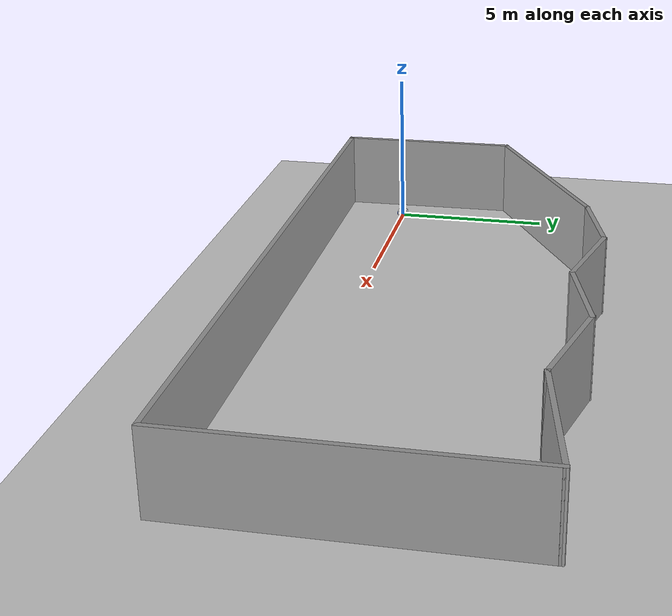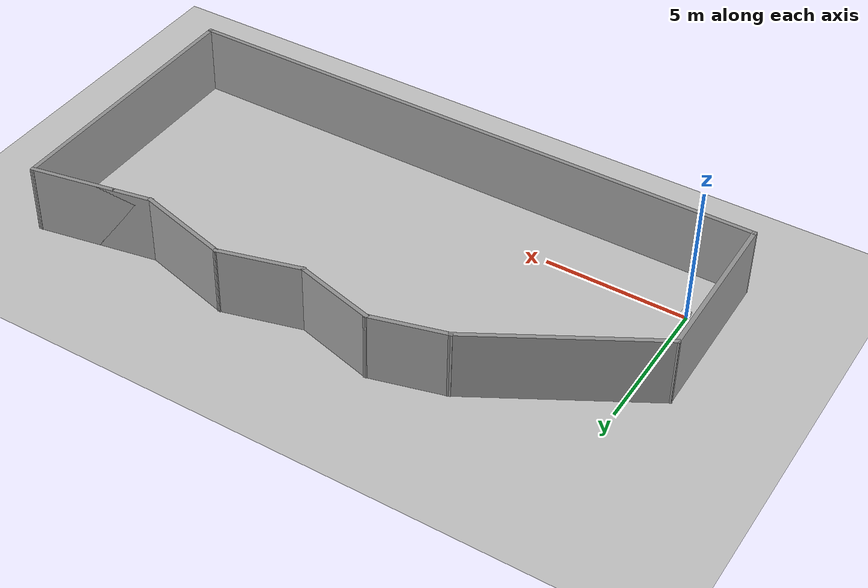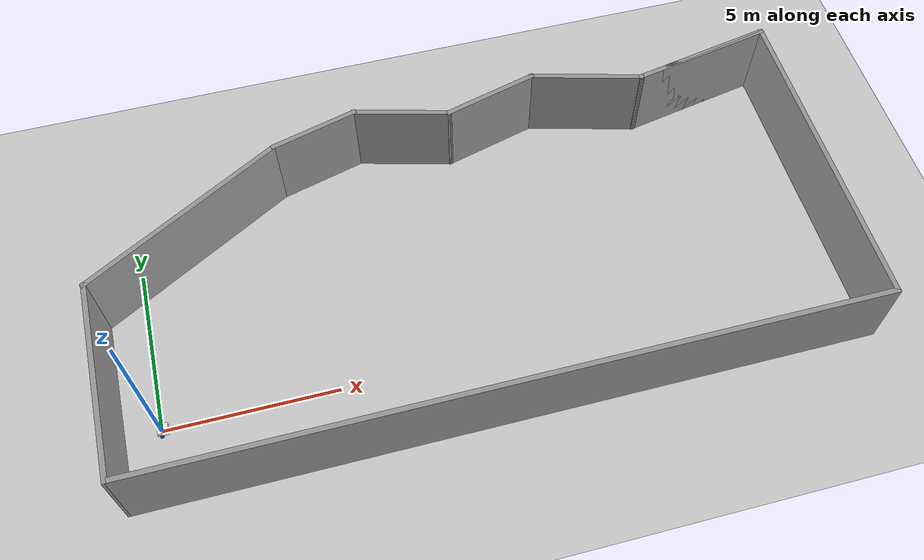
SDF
<sdf version="1.7">
 <world name="default">
  <light name="sun" type="directional">
   <pose>0 0 10 0 -0 0</pose>
   <diffuse>0.8 0.8 0.8 1</diffuse>
   <specular>0.2 0.2 0.2 1</specular>
   <attenuation>
    <range>1000</range>
    <constant>0.9</constant>
    <linear>0.01</linear>
    <quadratic>0.001</quadratic>
   </attenuation>
   <direction>-0.5 0.1 -0.9</direction>
   <spot><inner_angle>0</inner_angle><outer_angle>0</outer_angle><falloff>0</falloff></spot>
  </light>
  <model name="ground_plane">
   <static>1</static>
   <link name="link">
    <collision name="collision">
     <geometry><plane><normal>0 0 1</normal><size>100 100</size></plane></geometry>
     <surface><friction><ode><mu>100</mu><mu2>50</mu2></ode></friction></surface>
    </collision>
    <visual name="visual">
     <cast_shadows>0</cast_shadows>
     <geometry><plane><normal>0 0 1</normal><size>100 100</size></plane></geometry>
     <material>
      <script><uri>file://media/materials/scripts/gazebo.material</uri><name>Gazebo/Grey</name></script>
     </material>
    </visual>
   </link>
  </model>
  <gravity>0 0 -9.8</gravity>
  <magnetic_field>6e-06 2.3e-05 -4.2e-05</magnetic_field>
  <atmosphere type="adiabatic"/>
  <physics type="ode">
   <max_step_size>0.001</max_step_size>
   <real_time_factor>1</real_time_factor>
   <real_time_update_rate>1000</real_time_update_rate>
  </physics>
  <scene><ambient>0.4 0.4 0.4 1</ambient><background>0.7 0.7 0.7 1</background><shadows>1</shadows></scene>
  <audio><device>default</device></audio>
  <spherical_coordinates>
   <surface_model>EARTH_WGS84</surface_model>
   <latitude_deg>0</latitude_deg>
   <longitude_deg>0</longitude_deg>
   <elevation>0</elevation>
   <heading_deg>0</heading_deg>
  </spherical_coordinates>
  <model name="my_bot">
   <link name="base_link">
    <inertial>
     <pose>0.062857 0 0.078571 0 -0 0</pose>
     <mass>0.7</mass>
     <inertia>
      <ixx>0.0064169</ixx>
      <ixy>0</ixy>
      <ixz>0.000707143</ixz>
      <iyy>0.00711119</iyy>
      <iyz>0</iyz>
      <izz>0.00841929</izz>
     </inertia>
    </inertial>
    <collision name="base_link_fixed_joint_lump__chassis_collision">
     <pose>0.05 0 0.075 0 -0 0</pose>
     <geometry><box><size>0.3 0.3 0.15</size></box></geometry>
    </collision>
    <collision name="base_link_fixed_joint_lump__caster_wheel_collision_1">
     <pose>0.14 0 0 0 -0 0</pose>
     <geometry><sphere><radius>0.05</radius></sphere></geometry>
     <surface><friction><ode><mu>0.001</mu><mu2>0.001</mu2></ode></friction></surface>
    </collision>
    <collision name="base_link_fixed_joint_lump__laser_frame_collision_2">
     <pose>0.05 0 0.175 0 -0 0</pose>
     <geometry><cylinder><length>0.04</length><radius>0.05</radius></cylinder></geometry>
    </collision>
    <visual name="base_link_fixed_joint_lump__chassis_visual">
     <pose>0.05 0 0.075 0 -0 0</pose>
     <geometry><box><size>0.3 0.3 0.15</size></box></geometry>
     <material>
      <script><name>Gazebo/White</name><uri>file://media/materials/scripts/gazebo.material</uri></script>
     </material>
    </visual>
    <visual name="base_link_fixed_joint_lump__caster_wheel_visual_1">
     <pose>0.14 0 0 0 -0 0</pose>
     <geometry><sphere><radius>0.05</radius></sphere></geometry>
     <material>
      <script><name>Gazebo/Black</name><uri>file://media/materials/scripts/gazebo.material</uri></script>
     </material>
    </visual>
    <visual name="base_link_fixed_joint_lump__laser_frame_visual_2">
     <pose>0.05 0 0.175 0 -0 0</pose>
     <geometry><cylinder><length>0.04</length><radius>0.05</radius></cylinder></geometry>
     <material>
      <script><name>Gazebo/Red</name><uri>file://media/materials/scripts/gazebo.material</uri></script>
     </material>
    </visual>
    <sensor name="laser" type="ray">
     <visualize>1</visualize>
     <update_rate>10</update_rate>
     <ray>
      <scan>
       <horizontal>
        <samples>360</samples>
        <resolution>1</resolution>
        <min_angle>-3.14</min_angle>
        <max_angle>3.14</max_angle>
       </horizontal>
       <vertical><samples>1</samples><min_angle>0</min_angle><max_angle>0</max_angle></vertical>
      </scan>
      <range><min>0.3</min><max>12</max><resolution>0.01</resolution></range>
     </ray>
     <plugin name="laser_controller" filename="libgazebo_ros_ray_sensor.so">
      <ros><remapping>~/out:=scan</remapping></ros>
      <output_type>sensor_msgs/LaserScan</output_type>
      <frame_name>laser_frame</frame_name>
     </plugin>
     <pose>0.05 0 0.175 0 -0 0</pose>
    </sensor>
   </link>
   <joint name="left_wheel_joint" type="revolute">
    <pose relative_to="base_link">0 0.175 0 -1.5708 0 0</pose>
    <parent>base_link</parent>
    <child>left_wheel</child>
    <axis>
     <xyz>0 0 1</xyz>
     <limit><lower>-1e+16</lower><upper>1e+16</upper></limit>
     <dynamics><spring_reference>0</spring_reference><spring_stiffness>0</spring_stiffness></dynamics>
    </axis>
   </joint>
   <link name="left_wheel">
    <pose relative_to="left_wheel_joint">0 0 0 0 -0 0</pose>
    <inertial>
     <mass>0.5</mass>
     <inertia>
      <ixx>0.000379167</ixx>
      <ixy>0</ixy>
      <ixz>0</ixz>
      <iyy>0.000379167</iyy>
      <iyz>0</iyz>
      <izz>0.000625</izz>
     </inertia>
    </inertial>
    <collision name="left_wheel_collision">
     <geometry><cylinder><length>0.04</length><radius>0.05</radius></cylinder></geometry>
    </collision>
    <visual name="left_wheel_visual">
     <geometry><cylinder><length>0.04</length><radius>0.05</radius></cylinder></geometry>
     <material>
      <script><name>Gazebo/Blue</name><uri>file://media/materials/scripts/gazebo.material</uri></script>
     </material>
    </visual>
   </link>
   <joint name="right_wheel_joint" type="revolute">
    <pose relative_to="base_link">0 -0.175 0 1.5708 -0 0</pose>
    <parent>base_link</parent>
    <child>right_wheel</child>
    <axis>
     <xyz>0 0 -1</xyz>
     <limit><lower>-1e+16</lower><upper>1e+16</upper></limit>
     <dynamics><spring_reference>0</spring_reference><spring_stiffness>0</spring_stiffness></dynamics>
    </axis>
   </joint>
   <link name="right_wheel">
    <pose relative_to="right_wheel_joint">0 0 0 0 -0 0</pose>
    <inertial>
     <mass>0.5</mass>
     <inertia>
      <ixx>0.000379167</ixx>
      <ixy>0</ixy>
      <ixz>0</ixz>
      <iyy>0.000379167</iyy>
      <iyz>0</iyz>
      <izz>0.000625</izz>
     </inertia>
    </inertial>
    <collision name="right_wheel_collision">
     <geometry><cylinder><length>0.04</length><radius>0.05</radius></cylinder></geometry>
    </collision>
    <visual name="right_wheel_visual">
     <geometry><cylinder><length>0.04</length><radius>0.05</radius></cylinder></geometry>
     <material>
      <script><name>Gazebo/Blue</name><uri>file://media/materials/scripts/gazebo.material</uri></script>
     </material>
    </visual>
   </link>
   <static>0</static>
   <plugin name="diff_drive" filename="libgazebo_ros_diff_drive.so">
    <left_joint>left_wheel_joint</left_joint>
    <right_joint>right_wheel_joint</right_joint>
    <wheel_separation>0.35</wheel_separation>
    <wheel_diameter>0.1</wheel_diameter>
    <max_wheel_torque>200</max_wheel_torque>
    <max_wheel_acceleration>10.0</max_wheel_acceleration>
    <odometry_frame>odom</odometry_frame>
    <robot_base_frame>base_link</robot_base_frame>
    <publish_odom>1</publish_odom>
    <publish_odom_tf>1</publish_odom_tf>
    <publish_wheel_tf>1</publish_wheel_tf>
   </plugin>
   <pose>0.001942 3.3e-05 0.05 0 1e-05 0.000428</pose>
  </model>
  <model name="zonaprac">
   <pose>9.4558 2.74588 0 0 -0 0</pose>
   <link name="Wall_1">
    <collision name="Wall_1_Collision">
     <geometry><box><size>21.25 0.15 2.5</size></box></geometry>
     <pose>0 0 1.25 0 -0 0</pose>
    </collision>
    <visual name="Wall_1_Visual">
     <pose>0 0 1.25 0 -0 0</pose>
     <geometry><box><size>21.25 0.15 2.5</size></box></geometry>
     <material>
      <script><uri>file://media/materials/scripts/gazebo.material</uri><name>Gazebo/Grey</name></script>
      <ambient>1 1 1 1</ambient>
     </material>
     <meta><layer>0</layer></meta>
    </visual>
    <pose>0.051779 -4.84387 0 0 -0 0</pose>
   </link>
   <link name="Wall_10">
    <collision name="Wall_10_Collision">
     <geometry><box><size>2.75 0.15 2.5</size></box></geometry>
     <pose>0 0 1.25 0 -0 0</pose>
    </collision>
    <visual name="Wall_10_Visual">
     <pose>0 0 1.25 0 -0 0</pose>
     <geometry><box><size>2.75 0.15 2.5</size></box></geometry>
     <material>
      <script><uri>file://media/materials/scripts/gazebo.material</uri><name>Gazebo/Grey</name></script>
      <ambient>1 1 1 1</ambient>
     </material>
     <meta><layer>0</layer></meta>
    </visual>
    <pose>-3.61544 4.49171 0 0 -0 -2.87979</pose>
   </link>
   <link name="Wall_11">
    <collision name="Wall_11_Collision">
     <geometry><box><size>6.75 0.15 2.5</size></box></geometry>
     <pose>0 0 1.25 0 -0 0</pose>
    </collision>
    <visual name="Wall_11_Visual">
     <pose>0 0 1.25 0 -0 0</pose>
     <geometry><box><size>6.75 0.15 2.5</size></box></geometry>
     <material>
      <script><uri>file://media/materials/scripts/gazebo.material</uri><name>Gazebo/Grey</name></script>
      <ambient>1 1 1 1</ambient>
     </material>
     <meta><layer>0</layer></meta>
    </visual>
    <pose>-7.72903 2.50524 0 0 -0 -2.61799</pose>
   </link>
   <link name="Wall_12">
    <collision name="Wall_12_Collision">
     <geometry><box><size>5.8498 0.15 2.5</size></box></geometry>
     <pose>0 0 1.25 0 -0 0</pose>
    </collision>
    <visual name="Wall_12_Visual">
     <pose>0 0 1.25 0 -0 0</pose>
     <geometry><box><size>5.8498 0.15 2.5</size></box></geometry>
     <material>
      <script><uri>file://media/materials/scripts/gazebo.material</uri><name>Gazebo/Grey</name></script>
      <ambient>1 1 1 1</ambient>
     </material>
     <meta><layer>0</layer></meta>
    </visual>
    <pose>-10.5426 -1.99431 0 0 -0 -1.55523</pose>
   </link>
   <link name="Wall_2">
    <collision name="Wall_2_Collision">
     <geometry><box><size>9.75 0.15 2.5</size></box></geometry>
     <pose>0 0 1.25 0 -0 0</pose>
    </collision>
    <visual name="Wall_2_Visual">
     <pose>0 0 1.25 0 -0 0</pose>
     <geometry><box><size>9.75 0.15 2.5</size></box></geometry>
     <material>
      <script><uri>file://media/materials/scripts/gazebo.material</uri><name>Gazebo/Grey</name></script>
      <ambient>1 1 1 1</ambient>
     </material>
     <meta><layer>0</layer></meta>
    </visual>
    <pose>10.6018 -0.043868 0 0 -0 1.5708</pose>
   </link>
   <link name="Wall_4">
    <collision name="Wall_4_Collision">
     <geometry><box><size>4.44412 0.15 2.5</size></box></geometry>
     <pose>0 0 1.25 0 -0 0</pose>
    </collision>
    <visual name="Wall_4_Visual">
     <pose>0 0 1.25 0 -0 0</pose>
     <geometry><box><size>4.44412 0.15 2.5</size></box></geometry>
     <material>
      <script><uri>file://media/materials/scripts/gazebo.material</uri><name>Gazebo/Grey</name></script>
      <ambient>1 1 1 1</ambient>
     </material>
     <meta><layer>0</layer></meta>
    </visual>
    <pose>8.49183 4.35863 0 0 -0 0.186212</pose>
   </link>
   <link name="Wall_5">
    <collision name="Wall_5_Collision">
     <geometry><box><size>4.44412 0.15 2.5</size></box></geometry>
     <pose>0 0 1.25 0 -0 0</pose>
    </collision>
    <visual name="Wall_5_Visual">
     <pose>0 0 1.25 0 -0 0</pose>
     <geometry><box><size>4.44412 0.15 2.5</size></box></geometry>
     <material>
      <script><uri>file://media/materials/scripts/gazebo.material</uri><name>Gazebo/Grey</name></script>
      <ambient>1 1 1 1</ambient>
     </material>
     <meta><layer>0</layer></meta>
    </visual>
    <pose>8.49183 4.35863 0 0 -0 -2.95538</pose>
   </link>
   <link name="Wall_6">
    <collision name="Wall_6_Collision">
     <geometry><box><size>0.15 0.15 2.5</size></box></geometry>
     <pose>0 0 1.25 0 -0 0</pose>
    </collision>
    <visual name="Wall_6_Visual">
     <pose>0 0 1.25 0 -0 0</pose>
     <geometry><box><size>0.15 0.15 2.5</size></box></geometry>
     <material>
      <script><uri>file://media/materials/scripts/gazebo.material</uri><name>Gazebo/Grey</name></script>
      <ambient>1 1 1 1</ambient>
     </material>
     <meta><layer>0</layer></meta>
    </visual>
    <pose>6.38189 3.96113 0 0 -0 0</pose>
   </link>
   <link name="Wall_7">
    <collision name="Wall_7_Collision">
     <geometry><box><size>3.5 0.15 2.5</size></box></geometry>
     <pose>0 0 1.25 0 -0 0</pose>
    </collision>
    <visual name="Wall_7_Visual">
     <pose>0 0 1.25 0 -0 0</pose>
     <geometry><box><size>3.5 0.15 2.5</size></box></geometry>
     <material>
      <script><uri>file://media/materials/scripts/gazebo.material</uri><name>Gazebo/Grey</name></script>
      <ambient>1 1 1 1</ambient>
     </material>
     <meta><layer>0</layer></meta>
    </visual>
    <pose>4.76396 4.39465 0 0 -0 2.87979</pose>
   </link>
   <link name="Wall_8">
    <collision name="Wall_8_Collision">
     <geometry><box><size>3 0.15 2.5</size></box></geometry>
     <pose>0 0 1.25 0 -0 0</pose>
    </collision>
    <visual name="Wall_8_Visual">
     <pose>0 0 1.25 0 -0 0</pose>
     <geometry><box><size>3 0.15 2.5</size></box></geometry>
     <material>
      <script><uri>file://media/materials/scripts/gazebo.material</uri><name>Gazebo/Grey</name></script>
      <ambient>1 1 1 1</ambient>
     </material>
     <meta><layer>0</layer></meta>
    </visual>
    <pose>1.76959 4.45935 0 0 -0 -2.87979</pose>
   </link>
   <link name="Wall_9">
    <collision name="Wall_9_Collision">
     <geometry><box><size>3 0.15 2.5</size></box></geometry>
     <pose>0 0 1.25 0 -0 0</pose>
    </collision>
    <visual name="Wall_9_Visual">
     <pose>0 0 1.25 0 -0 0</pose>
     <geometry><box><size>3 0.15 2.5</size></box></geometry>
     <material>
      <script><uri>file://media/materials/scripts/gazebo.material</uri><name>Gazebo/Grey</name></script>
      <ambient>1 1 1 1</ambient>
     </material>
     <meta><layer>0</layer></meta>
    </visual>
    <pose>-0.983296 4.45935 0 0 -0 2.87979</pose>
   </link>
   <static>1</static>
  </model>
 </world>
</sdf>
